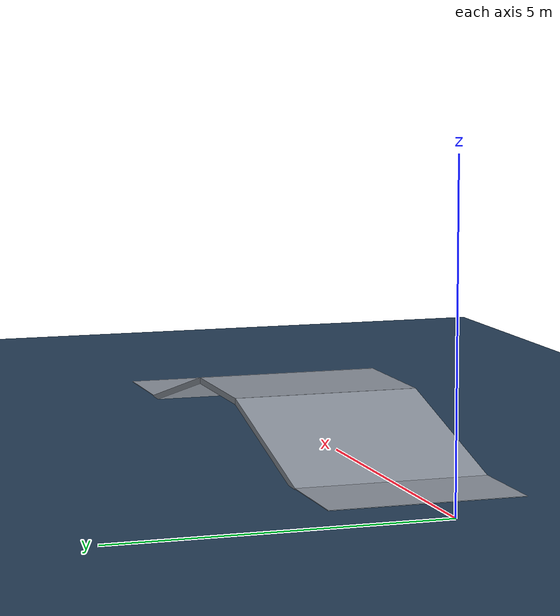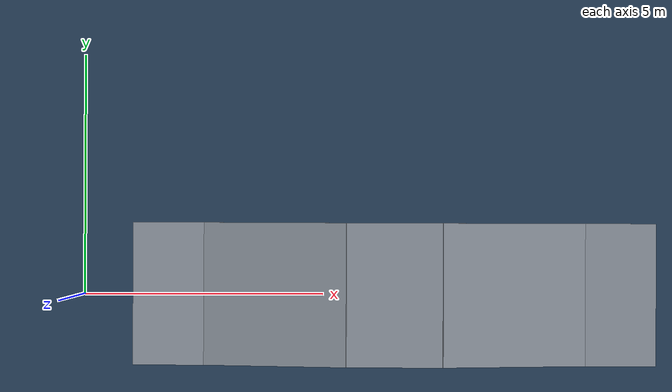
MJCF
<?xml version="1.0" encoding="utf-8"?>
<mujoco model="map_slope">
  <compiler meshdir="../model/assets" />

  <option timestep="0.002" gravity="0 0 -9.81" integrator="implicitfast" />

  <statistic center="6 0 0.4" extent="1.2" />

  <visual>
    <headlight diffuse="0.6 0.6 0.6" ambient="0.3 0.3 0.3" specular="0 0 0" />
    <rgba haze="0.15 0.25 0.35 1" />
    <global azimuth="135" elevation="-25" />
    <quality shadowsize="4096" />
  </visual>
<asset>
    <texture type="skybox" builtin="gradient" rgb1="0.3 0.5 0.7" rgb2="0 0 0" width="512" height="3072" />
    <texture type="2d" name="groundplane" builtin="checker" mark="edge" rgb1="0.2 0.3 0.4" rgb2="0.1 0.2 0.3" markrgb="0.8 0.8 0.8" width="300" height="300" />
    <material name="groundplane" texture="groundplane" texuniform="true" texrepeat="5 5" reflectance="0.2" />
<material name="terrain" rgba="0.55 0.58 0.62 1" reflectance="0.05" />
  </asset>

  <worldbody>
    <light pos="0 0 3" dir="0 0 -1" directional="true" castshadow="true" />
<geom name="floor" size="0 0 0.05" type="plane" material="groundplane" friction="0.8 0.05 0.01" />

    <geom name="start_pad" type="box" pos="1.7500 0 0.0050" size="0.7500 1.5 0.0050" material="terrain" />
    <geom name="ramp_up" type="box" pos="4.0000 0 0.3637" size="1.5529 1.5 0.05" quat="0.991445 0 -0.130526 0" material="terrain" />
    <geom name="top_platform" type="box" pos="6.5000 0 0.7640" size="1.0000 1.5 0.05" material="terrain" />
    <geom name="ramp_down" type="box" pos="9.0000 0 0.3637" size="1.5529 1.5 0.05" quat="0.991445 0 0.130526 0" material="terrain" />
    <geom name="end_pad" type="box" pos="11.2500 0 0.0050" size="0.7500 1.5 0.0050" material="terrain" />
  </worldbody>
</mujoco>
